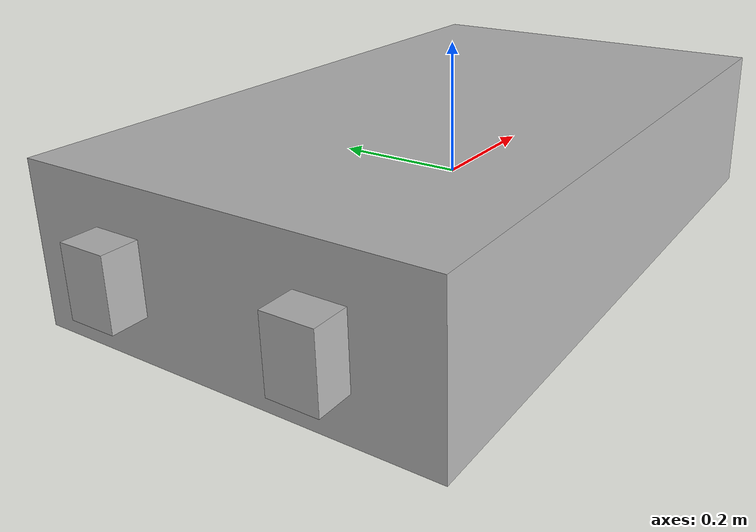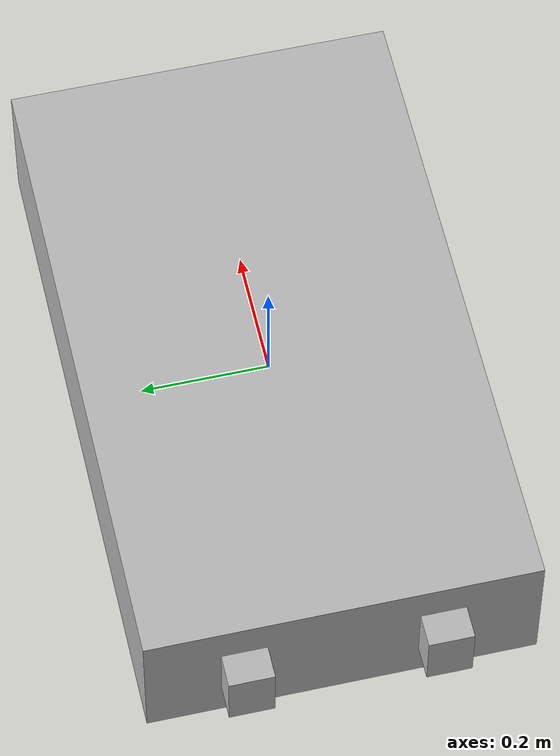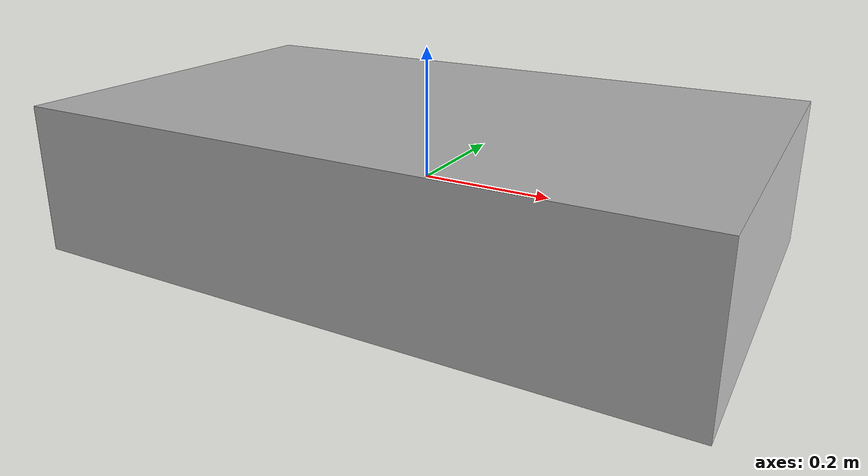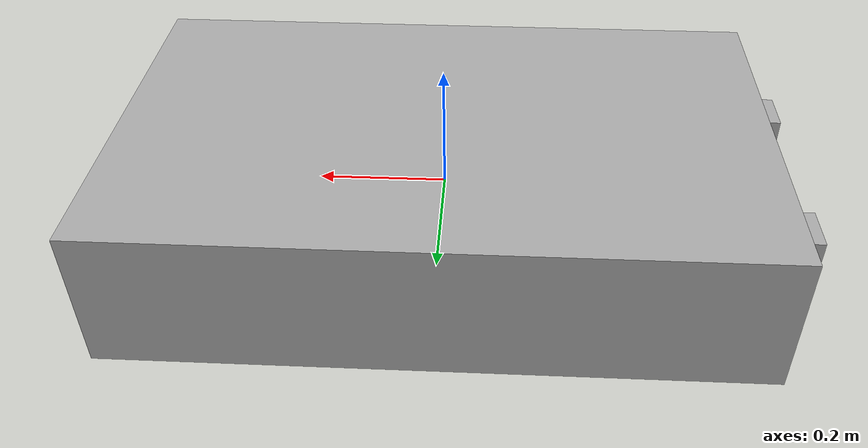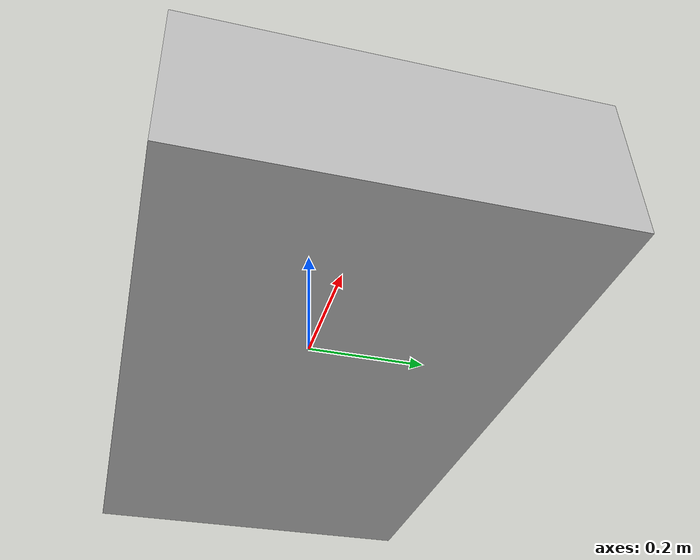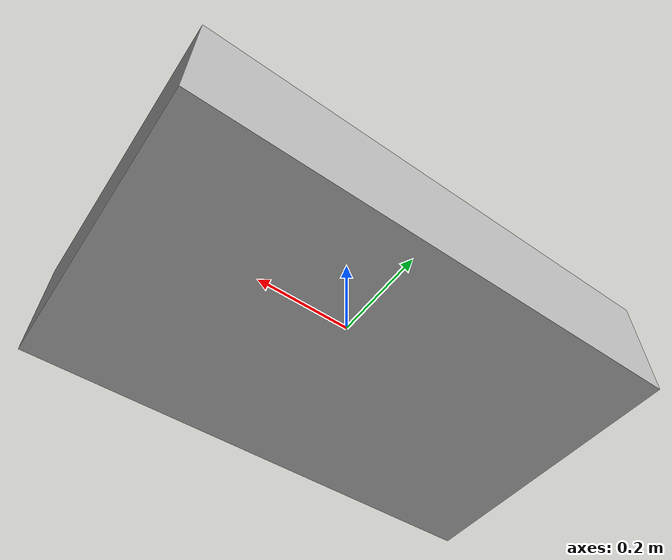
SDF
<?xml version="1.0"?>
<sdf version="1.7">
  <model name="box_usv">
    <link name="base_link">
      <pose>0 0 0 0 0 0</pose>
      <inertial>
        <pose>0.0012 0 -0.05 0 0 0</pose>
        <mass>100</mass>
        <inertia>
          <ixx>1.9833</ixx>
          <ixy>0</ixy>
          <ixz>0</ixz>
          <iyy>2.358</iyy>
          <iyz>0</iyz>
          <izz>3.292</izz>
        </inertia>
      </inertial>
      <visual name="hull_visual">
        <geometry>
          <box><size>1 0.6 0.23</size></box>
        </geometry>
      </visual>
      <collision name="hull_collision">
        <geometry>
          <box><size>1 0.6 0.23</size></box>
        </geometry>
      </collision>
    </link>

    <link name="camera_link">
      <pose>0 0 0.6 0 0 0</pose>
      <sensor name="camera_sensor" type="camera">
        <camera>
          <horizontal_fov>1.047</horizontal_fov>
          <image>
            <width>640</width>
            <height>480</height>
            <format>R8G8B8</format>
          </image>
          <clip>
            <near>0.1</near>
            <far>100</far>
          </clip>
        </camera>
        <always_on>true</always_on>
        <update_rate>30</update_rate>
        <visualize>true</visualize>
      </sensor>
    </link>
    <joint name="camera_joint" type="fixed">
      <parent>base_link</parent>
      <child>camera_link</child>
    </joint>

    <link name="thruster_L">
      <pose>-0.525 -0.15 0 0 1.57 0</pose>
      <visual name="visual">
        <geometry><box><size>0.1 0.07 0.05</size></box></geometry>
      </visual>
      <collision name="collision">
        <geometry><box><size>0.1 0.07 0.05</size></box></geometry>
      </collision>
      <inertial>
        <mass>0.525</mass>
        <inertia>
          <ixx>0.00032375</ixx>
          <ixy>0</ixy>
          <ixz>0</ixz>
          <iyy>0.0018594</iyy>
          <iyz>0</iyz>
          <izz>0.0019644</izz>
        </inertia>
      </inertial>
    </link>
    <joint name="joint_propeller_port_L" type="revolute">
      <parent>base_link</parent>
      <child>thruster_L</child>
      <axis><xyz>0 0 1</xyz></axis>
    </joint>

    <link name="thruster_R">
      <pose>-0.525 0.15 0 0 1.57 0</pose>
      <visual name="visual">
        <geometry><box><size>0.1 0.07 0.05</size></box></geometry>
      </visual>
      <collision name="collision">
        <geometry><box><size>0.1 0.07 0.05</size></box></geometry>
      </collision>
      <inertial>
        <mass>0.525</mass>
        <inertia>
          <ixx>0.00032375</ixx>
          <ixy>0</ixy>
          <ixz>0</ixz>
          <iyy>0.0018594</iyy>
          <iyz>0</iyz>
          <izz>0.0019644</izz>
        </inertia>
      </inertial>
    </link>
    <joint name="joint_propeller_port_R" type="revolute">
      <parent>base_link</parent>
      <child>thruster_R</child>
      <axis><xyz>0 0 1</xyz></axis>
    </joint>

    <plugin filename="ignition-gazebo-hydrodynamics-system" name="ignition::gazebo::systems::Hydrodynamics">
      <link_name>base_link</link_name>
      <xDotU>-0.04876161</xDotU>
      <yDotV>-1.26324739</yDotV>
      <zDotW>-1.26324739</zDotW>
      <kDotP>0</kDotP>
      <mDotQ>-0.3346</mDotQ>
      <nDotR>-0.3346</nDotR>
      <xUabsU>-0.62282</xUabsU>
      <xU>-5</xU>
      <yVabsV>-60.127</yVabsV>
      <yV>-5</yV>
      <zWabsW>-6.0127</zWabsW>
      <zW>-100</zW>
      <kPabsP>-0.001916</kPabsP>
      <kP>-1</kP>
      <mQabsQ>-6.32698957</mQabsQ>
      <mQ>-1</mQ>
      <nRabsR>-6.32698957</nRabsR>
      <nR>-1</nR>
    </plugin>
    <plugin filename="ignition-gazebo-thruster-system" name="ignition::gazebo::systems::Thruster">
      <joint_name>joint_propeller_port_L</joint_name>
      <namespace>box_usv</namespace>
      <topic>thruster_L</topic>
      <thrust_coefficient>0.001</thrust_coefficient>
      <fluid_density>1000</fluid_density>
      <propeller_diameter>0.4</propeller_diameter>
    </plugin>
    <plugin filename="ignition-gazebo-thruster-system" name="ignition::gazebo::systems::Thruster">
      <joint_name>joint_propeller_port_R</joint_name>
      <namespace>box_usv</namespace>
      <topic>thruster_R</topic>
      <thrust_coefficient>0.001</thrust_coefficient>
      <fluid_density>1000</fluid_density>
      <propeller_diameter>0.4</propeller_diameter>
    </plugin>
    <plugin filename="ignition-gazebo-sensors-system" name="ignition::gazebo::systems::Sensors">
      <render_engine>ogre2</render_engine>
    </plugin>
  </model>
</sdf>
